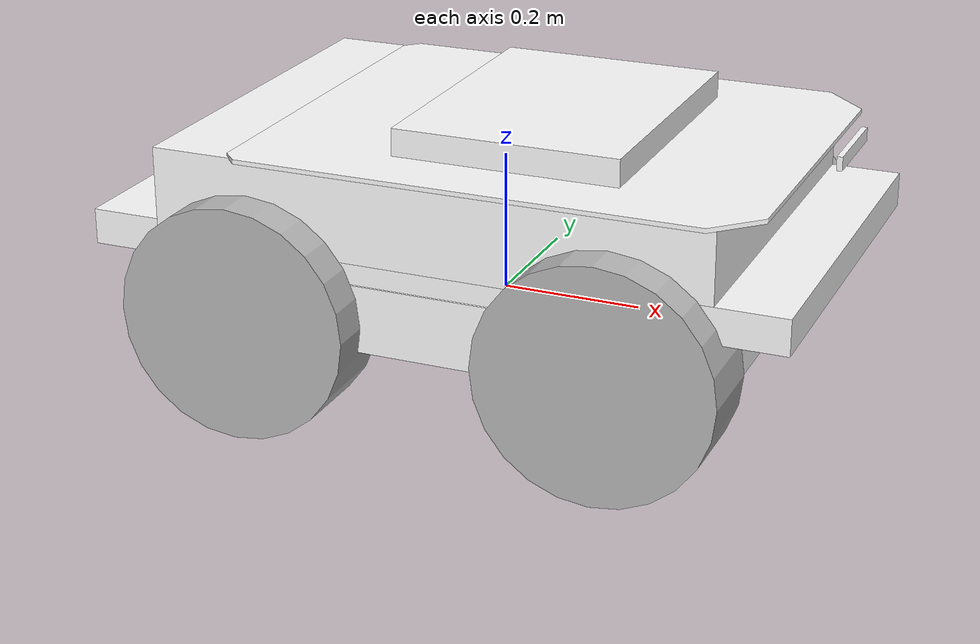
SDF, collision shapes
<?xml version="1.0" encoding="utf-8"?>
<sdf version="1.8">
  <model name="igt_one">

    <link name="base_link">
      <pose>0 0 0 0 0 0</pose>
      <inertial>
        <pose>0 0 0.062329 0 0 0</pose>
        <mass>46.064</mass>
        <inertia>
          <ixx>0.615397</ixx>
          <ixy>-0.0240585</ixy>
          <ixz>-0.120749</ixz>
          <iyy>1.75388</iyy>
          <iyz>-0.0028322</iyz>
          <izz>2.03641</izz>
        </inertia>
      </inertial>

      <collision name="base_link_collision">
        <pose>0 0 0.12 0 0 0</pose>
        <geometry>
          <box>
            <size>0.9874 0.5709 0.05</size>
          </box>
        </geometry>
      </collision>

      <collision name="base_link_collision_bottom">
        <pose>0 0 0.046 0 0 0</pose>
        <geometry>
          <box>
            <size>0.80 0.5709 0.095</size>
          </box>
        </geometry>
      </collision>

      <collision name="base_link_collision_1">
        <pose>0 0 0.185625 0 0 0</pose>
        <geometry>
          <box>
            <size>0.78992 0.5709 0.12375</size>
          </box>
        </geometry>
      </collision>

      <collision name="base_link_fixed_joint_lump__camera/camera_link_collision_2">
        <pose>0.488 0 0.272 0 0 0</pose>
        <geometry>
          <box>
            <size>0.0078 0.13 0.0192</size>
          </box>
        </geometry>
        <surface>
          <contact>
            <ode>
              <kp>1e+13</kp>
              <kd>1</kd>
            </ode>
          </contact>
          <friction>
            <ode>
              <mu2>1</mu2>
              <fdir1>0 0 0</fdir1>
            </ode>
          </friction>
        </surface>
      </collision>

      <collision name="base_link_fixed_joint_lump__top_plate_link_collision_3">
        <pose>0.0812 0 0.245 0 0 0</pose>
        <geometry>
          <mesh>
            <scale>1 1 1</scale>
            <uri>file:///home/jasonwoo/colcon_ws/src/ros2-igt/igt_ignition/igt_one/meshes/top_plate.dae</uri>
          </mesh>
        </geometry>
      </collision>

      <collision name="base_link_fixed_joint_lump__top_plate_link_collision_4">
        <pose>0.0812 0 0.245 0 0 0</pose>
        <geometry>
          <box>
            <size>0.32 0.41 0.09</size>
          </box>
        </geometry>
      </collision>

      <visual name="base_link_visual">
        <pose>0 0 0 0 -0 0</pose>
        <geometry>
          <mesh>
            <scale>1 1 1</scale>
            <uri>file:///home/jasonwoo/colcon_ws/src/ros2-igt/igt_ignition/igt_one/meshes/base_link.dae</uri>
          </mesh>
        </geometry>
      </visual>

      <visual name="base_link_fixed_joint_lump__camera/camera_link_visual_1">
        <pose>0.438 0 0.272 0 0 0</pose>
        <geometry>
          <mesh>
            <uri>file:///home/jasonwoo/colcon_ws/src/ros2-igt/igt_ignition/igt_one/meshes/realsense.dae</uri>
          </mesh>
        </geometry>
      </visual>

      <visual name="base_link_fixed_joint_lump__cliff_sensor_link_visual_2">
        <pose>0.435 0 0.235 -2.35619 0 -1.5708</pose>
        <geometry>
          <cylinder>
            <length>0.02</length>
            <radius>0.005</radius>
          </cylinder>
        </geometry>
      </visual>

      <visual name="base_link_fixed_joint_lump__front_bumper_link_visual_3">
        <pose>0.48 0 0.091 0 0 0</pose>
        <geometry>
          <mesh>
            <scale>1 1 1</scale>
            <uri>file:///home/jasonwoo/colcon_ws/src/ros2-igt/igt_ignition/igt_one/meshes/bumper.dae</uri>
          </mesh>
        </geometry>
      </visual>

      <visual name="base_link_fixed_joint_lump__rear_bumper_link_visual_4">
        <pose>-0.48 0 0.091 0 0 3.14159</pose>
        <geometry>
          <mesh>
            <scale>1 1 1</scale>
            <uri>file:///home/jasonwoo/colcon_ws/src/ros2-igt/igt_ignition/igt_one/meshes/bumper.dae</uri>
          </mesh>
        </geometry>
      </visual>

      <visual name="base_link_fixed_joint_lump__top_chassis_link_visual_5">
        <pose>0 0 0 0 -0 0</pose>
        <geometry>
          <mesh>
            <scale>1 1 1</scale>
            <uri>file:///home/jasonwoo/colcon_ws/src/ros2-igt/igt_ignition/igt_one/meshes/top_chassis.dae</uri>
          </mesh>
        </geometry>
      </visual>

      <visual name="base_link_fixed_joint_lump__top_plate_link_visual_6">
        <pose>0.0812 0 0.245 0 -0 0</pose>
        <geometry>
          <mesh>
            <scale>1 1 1</scale>
            <uri>file:///home/jasonwoo/colcon_ws/src/ros2-igt/igt_ignition/igt_one/meshes/top_plate.dae</uri>
          </mesh>
        </geometry>
      </visual>

      <visual name="base_link_fixed_joint_lump__user_rail_link_visual_13">
        <pose>0.272 0 0.245 0 -0 0</pose>
        <geometry>
          <mesh>
            <scale>1 1 1</scale>
            <uri>file:///home/jasonwoo/colcon_ws/src/ros2-igt/igt_ignition/igt_one/meshes/user_rail.dae</uri>
          </mesh>
        </geometry>
      </visual>

      <sensor name="camera_igt_one" type="camera">
        <pose>0.438 0 0.272 0 0 0</pose>
        <camera>
          <horizontal_fov>1.047</horizontal_fov>
          <image>
            <width>320</width>
            <height>240</height>
          </image>
          <clip>
            <near>0.1</near>
            <far>100</far>
          </clip>
        </camera>
        <always_on>1</always_on>
        <update_rate>30</update_rate>
        <visualize>true</visualize>
        <topic>/model/igt_one/camera</topic>
      </sensor>

      <sensor name="d435_depth" type="depth_camera">
				<always_on>1</always_on>
				<update_rate>10</update_rate>
				<visualize>true</visualize>
				<topic>/model/igt_one/depth_camera</topic>
				<pose>0.438 0 0.322 0 0 0</pose>
				<camera>
					<horizontal_fov>1.05</horizontal_fov>
					<image>
						<width>256</width>
						<height>256</height>
					</image>
					<clip>
						<near>0.1</near>
						<far>100</far>
					</clip>
					<noise>
						<type>gaussian</type>
						<mean>0</mean>
						<stddev>0.1</stddev>
					</noise>
				</camera>
			</sensor>

      <sensor name="front_cliff_laser" type="gpu_ray">
          <pose>0.435 0 0.235 0 -2.4434589 0</pose>
          <update_rate>50</update_rate>
          <lidar>
              <scan>
                  <horizontal>
                      <samples>1</samples>
                      <resolution>1</resolution>
                      <min_angle>3.141592653589793</min_angle>
                      <max_angle>3.141592653589793</max_angle>
                  </horizontal>
              </scan>
              <range>
                  <min>0.04</min>
                  <max>40</max>
                  <resolution>0.01</resolution>
              </range>
              <noise>
                  <type>gaussian</type>
                  <mean>0</mean>
                  <stddev>0.01</stddev>
              </noise>
          </lidar>
      </sensor>
      <gravity>1</gravity>
      <velocity_decay/>

      <sensor name="gpu_lidar" type="gpu_lidar">
        <pose>0.48 0 0.716 0 0 0</pose>
        <visualize>true</visualize>
        <topic>/model/igt_one/laserscan</topic>
        <update_rate>10</update_rate>
        <always_on>1</always_on>
        <ray>
          <scan>
            <horizontal>
              <samples>640</samples>
              <resolution>1</resolution>
              <min_angle>-3.14159</min_angle>
              <max_angle>3.14159</max_angle>
            </horizontal>
            <vertical>
              <samples>1</samples>
              <resolution>1</resolution>
              <min_angle>0</min_angle>
              <max_angle>0</max_angle>
            </vertical>
          </scan>
          <range>
            <min>0.08</min>
            <max>10</max>
            <resolution>0.01</resolution>
          </range>
          <noise>
            <type>gaussian</type>
            <mean>0</mean>
            <stddev>0.01</stddev>
          </noise>
        </ray>
      </sensor>

      <light name="flashlight_flashlight_light_source_lamp_light" type="spot">
        <pose>0.48 0.08 0.12 3.141592653589793 1.5707926535897934 -0.0015926535897931</pose>
        <attenuation>
          <range>50</range>
          <linear>0</linear>
          <constant>0.1</constant>
          <quadratic>0.0025</quadratic>
        </attenuation>
        <diffuse>0.8 0.8 0.5 1</diffuse>
        <specular>0.8 0.8 0.5 1</specular>
        <spot>
          <inner_angle>1.2</inner_angle>
          <outer_angle>1.3</outer_angle>
          <falloff>1</falloff>
        </spot>
        <direction>0 0 -1</direction>
      </light>

      <visual name="flashlight_flashlight_light_source_lamp_viz_visual">
        <pose>0.48 0.08 0.12 3.141592653589793 1.5707926535897934 -0.0015926535897931</pose>
        <geometry>
          <cylinder>
            <radius>0.019</radius>
            <length>0.005</length>
          </cylinder>
        </geometry>
        <transparency>0</transparency>
        <material>
          <ambient>1 1 1 1</ambient>
          <diffuse>1 1 1 1</diffuse>
          <specular>1 1 1 1</specular>
          <emissive>1 1 1 1</emissive>
        </material>
      </visual>

      <sensor name="imu_sensor" type="imu">
        <always_on>1</always_on>
        <update_rate>50</update_rate>
        <imu>
          <enable_orientation>0</enable_orientation>
          <angular_velocity>
            <x>
              <noise type="gaussian">
                <mean>0</mean>
                <stddev>0.009</stddev>
                <bias_mean>0.00075</bias_mean>
                <bias_stddev>0.005</bias_stddev>
                <dynamic_bias_stddev>0.00002</dynamic_bias_stddev>
                <dynamic_bias_correlation_time>400.0</dynamic_bias_correlation_time>
                <precision>0.00025</precision>
              </noise>
            </x>

            <y>
              <noise type="gaussian">
                  <mean>0</mean>
                  <stddev>0.009</stddev>
                  <bias_mean>0.00075</bias_mean>
                  <bias_stddev>0.005</bias_stddev>
                  <dynamic_bias_stddev>0.00002</dynamic_bias_stddev>
                  <dynamic_bias_correlation_time>400.0</dynamic_bias_correlation_time>
                  <precision>0.00025</precision>
              </noise>
            </y>

            <z>
              <noise type="gaussian">
                  <mean>0</mean>
                  <stddev>0.009</stddev>
                  <bias_mean>0.00075</bias_mean>
                  <bias_stddev>0.005</bias_stddev>
                  <dynamic_bias_stddev>0.00002</dynamic_bias_stddev>
                  <dynamic_bias_correlation_time>400.0</dynamic_bias_correlation_time>
                  <precision>0.00025</precision>
              </noise>
            </z>
          </angular_velocity>

          <linear_acceleration>
            <x>
              <noise type="gaussian">
                  <mean>0</mean>
                  <stddev>0.021</stddev>
                  <bias_mean>0.05</bias_mean>
                  <bias_stddev>0.0075</bias_stddev>
                  <dynamic_bias_stddev>0.000375</dynamic_bias_stddev>
                  <dynamic_bias_correlation_time>175.0</dynamic_bias_correlation_time>
                  <precision>0.005</precision>
              </noise>
            </x>

            <y>
              <noise type="gaussian">
                <mean>0</mean>
                <stddev>0.021</stddev>
                <bias_mean>0.05</bias_mean>
                <bias_stddev>0.0075</bias_stddev>
                <dynamic_bias_stddev>0.000375</dynamic_bias_stddev>
                <dynamic_bias_correlation_time>175.0</dynamic_bias_correlation_time>
                <precision>0.005</precision>
              </noise>
            </y>

            <z>
              <noise type="gaussian">
                <mean>0</mean>
                <stddev>0.021</stddev>
                <bias_mean>0.05</bias_mean>
                <bias_stddev>0.0075</bias_stddev>
                <dynamic_bias_stddev>0.000375</dynamic_bias_stddev>
                <dynamic_bias_correlation_time>175.0</dynamic_bias_correlation_time>
                <precision>0.005</precision>
              </noise>
            </z>
          </linear_acceleration>
        </imu>
      </sensor>
    </link>

    <link name="front_left_wheel_link">
      <pose>0.256 0.2854 0.03282 0 -0 0</pose>
      <inertial>
        <pose>0 0 0 0 0 0</pose>
        <mass>2.637</mass>
        <inertia>
          <ixx>0.02467</ixx>
          <ixy>0</ixy>
          <ixz>0</ixz>
          <iyy>0.04411</iyy>
          <iyz>0</iyz>
          <izz>0.02467</izz>
        </inertia>
      </inertial>

      <collision name="front_left_wheel_link_collision">
        <pose>0 0 0 1.5707963267948966 -0 0</pose>
        <geometry>
          <cylinder>
            <length>0.1143</length>
            <radius>0.1651</radius>
          </cylinder>
        </geometry>
        <surface>
          <contact>
            <ode>
              <kp>1e+07</kp>
              <kd>1</kd>
            </ode>
          </contact>
          <friction>
            <ode>
              <mu>0.5</mu>
              <mu2>1</mu2>
              <slip1>0.00062</slip1>
              <slip2>0</slip2>
              <fdir1>0 0 1</fdir1>
            </ode>
          </friction>
        </surface>
      </collision>

      <visual name="front_left_wheel_link_visual">
        <pose>0 0 0 0 -0 0</pose>
        <geometry>
          <mesh>
            <scale>1 1 1</scale>
            <uri>file:///home/jasonwoo/colcon_ws/src/ros2-igt/igt_ignition/igt_one/meshes/wheel.dae</uri>
          </mesh>
        </geometry>
      </visual>
      <gravity>1</gravity>
      <velocity_decay/>
    </link>

    <joint name="front_left_wheel_joint" type="revolute">
      <child>front_left_wheel_link</child>
      <parent>base_link</parent>
      <axis>
        <xyz>0 1 0</xyz>
        <limit>
          <lower>-1e+16</lower>
          <upper>1e+16</upper>
        </limit>
        <dynamics>
          <spring_reference>0</spring_reference>
          <spring_stiffness>0</spring_stiffness>
        </dynamics>
        <use_parent_model_frame>1</use_parent_model_frame>
      </axis>
    </joint>

    <link name="front_right_wheel_link">
      <pose>0.256 -0.2854 0.03282 0 -0 0</pose>
      <inertial>
        <pose>0 0 0 0 -0 0</pose>
        <mass>2.637</mass>
        <inertia>
          <ixx>0.02467</ixx>
          <ixy>0</ixy>
          <ixz>0</ixz>
          <iyy>0.04411</iyy>
          <iyz>0</iyz>
          <izz>0.02467</izz>
        </inertia>
      </inertial>

      <collision name="front_right_wheel_link_collision">
        <pose>0 0 0 1.5707963267948966 -0 0</pose>
        <geometry>
          <cylinder>
            <length>0.1143</length>
            <radius>0.1651</radius>
          </cylinder>
        </geometry>
        <surface>
          <contact>
            <ode>
              <kp>1e+07</kp>
              <kd>1</kd>
            </ode>
          </contact>
          <friction>
            <ode>
              <mu>0.5</mu>
              <mu2>1</mu2>
              <slip1>0.00062</slip1>
              <slip2>0</slip2>
              <fdir1>0 0 1</fdir1>
            </ode>
          </friction>
        </surface>
      </collision>

      <visual name="front_right_wheel_link_visual">
        <pose>0 0 0 0 -0 0</pose>
        <geometry>
          <mesh>
            <scale>1 1 1</scale>
            <uri>file:///home/jasonwoo/colcon_ws/src/ros2-igt/igt_ignition/igt_one/meshes/wheel.dae</uri>
          </mesh>
        </geometry>
      </visual>
      <gravity>1</gravity>
      <velocity_decay/>
    </link>

    <joint name="front_right_wheel_joint" type="revolute">
      <child>front_right_wheel_link</child>
      <parent>base_link</parent>
      <axis>
        <xyz>0 1 0</xyz>
        <limit>
          <lower>-1e+16</lower>
          <upper>1e+16</upper>
        </limit>
        <dynamics>
          <spring_reference>0</spring_reference>
          <spring_stiffness>0</spring_stiffness>
        </dynamics>
        <use_parent_model_frame>1</use_parent_model_frame>
      </axis>
    </joint>

    <link name="rear_left_wheel_link">
      <pose>-0.256 0.2854 0.03282 0 -0 0</pose>
      <inertial>
        <pose>0 0 0 0 -0 0</pose>
        <mass>2.637</mass>
        <inertia>
          <ixx>0.02467</ixx>
          <ixy>0</ixy>
          <ixz>0</ixz>
          <iyy>0.04411</iyy>
          <iyz>0</iyz>
          <izz>0.02467</izz>
        </inertia>
      </inertial>

      <collision name="rear_left_wheel_link_collision">
        <pose>0 0 0 1.5707963267948966 -0 0</pose>
        <geometry>
          <cylinder>
            <length>0.1143</length>
            <radius>0.1651</radius>
          </cylinder>
        </geometry>
        <surface>
          <contact>
            <ode>
              <kp>1e+07</kp>
              <kd>1</kd>
            </ode>
          </contact>
          <friction>
            <ode>
              <mu>0.5</mu>
              <mu2>1</mu2>
              <slip1>0.00062</slip1>
              <slip2>0</slip2>
              <fdir1>0 0 1</fdir1>
            </ode>
          </friction>
        </surface>
      </collision>

      <visual name="rear_left_wheel_link_visual">
        <pose>0 0 0 0 -0 0</pose>
        <geometry>
          <mesh>
            <scale>1 1 1</scale>
            <uri>file:///home/jasonwoo/colcon_ws/src/ros2-igt/igt_ignition/igt_one/meshes/wheel.dae</uri>
          </mesh>
        </geometry>
      </visual>
      <gravity>1</gravity>
      <velocity_decay/>
    </link>

    <joint name="rear_left_wheel_joint" type="revolute">
      <child>rear_left_wheel_link</child>
      <parent>base_link</parent>
      <axis>
        <xyz>0 1 0</xyz>
        <limit>
          <lower>-1e+16</lower>
          <upper>1e+16</upper>
        </limit>
        <dynamics>
          <spring_reference>0</spring_reference>
          <spring_stiffness>0</spring_stiffness>
        </dynamics>
        <use_parent_model_frame>1</use_parent_model_frame>
      </axis>
    </joint>

    <link name="rear_right_wheel_link">
      <pose >-0.256 -0.2854 0.03282 0 -0 0</pose>
      <inertial>
        <pose>0 0 0 0 -0 0</pose>
        <mass>2.637</mass>
        <inertia>
          <ixx>0.02467</ixx>
          <ixy>0</ixy>
          <ixz>0</ixz>
          <iyy>0.04411</iyy>
          <iyz>0</iyz>
          <izz>0.02467</izz>
        </inertia>
      </inertial>

      <collision name="rear_right_wheel_link_collision">
        <pose>0 0 0 1.5707963267948966 -0 0</pose>
        <geometry>
          <cylinder>
            <length>0.1143</length>
            <radius>0.1651</radius>
          </cylinder>
        </geometry>
        <surface>
          <contact>
            <ode>
              <kp>1e+07</kp>
              <kd>1</kd>
            </ode>
          </contact>
          <friction>
            <ode>
              <mu>0.5</mu>
              <mu2>1</mu2>
              <slip1>0.00062</slip1>
              <slip2>0</slip2>
              <fdir1>0 0 1</fdir1>
            </ode>
          </friction>
        </surface>
      </collision>

      <visual name="rear_right_wheel_link_visual">
        <pose>0 0 0 0 -0 0</pose>
        <geometry>
          <mesh>
            <scale>1 1 1</scale>
            <uri>file:///home/jasonwoo/colcon_ws/src/ros2-igt/igt_ignition/igt_one/meshes/wheel.dae</uri>
          </mesh>
        </geometry>
      </visual>
      <gravity>1</gravity>
      <velocity_decay/>
    </link>

    <joint name="rear_right_wheel_joint" type="revolute">
      <child>rear_right_wheel_link</child>
      <parent>base_link</parent>
      <axis>
        <xyz>0 1 0</xyz>
        <limit>
          <lower>-1e+16</lower>
          <upper>1e+16</upper>
        </limit>
        <dynamics>
          <spring_reference>0</spring_reference>
          <spring_stiffness>0</spring_stiffness>
        </dynamics>
        <use_parent_model_frame>1</use_parent_model_frame>
      </axis>
    </joint>

    <plugin
      filename="ignition-gazebo-joint-state-publisher-system"
      name="ignition::gazebo::systems::JointStatePublisher">
    </plugin>

    <plugin
      filename="ignition-gazebo-pose-publisher-system"
      name="ignition::gazebo::systems::PosePublisher">
      <publish_link_pose>true</publish_link_pose>
      <use_pose_vector_msg>true</use_pose_vector_msg>
      <static_publisher>true</static_publisher>
      <static_update_frequency>1</static_update_frequency>
    </plugin>

    <plugin
      filename="ignition-gazebo-odometry-publisher-system"
      name="ignition::gazebo::systems::OdometryPublisher">
      <odom_frame>odom</odom_frame>
      <robot_base_frame>base_link</robot_base_frame>
    </plugin>

    <plugin
      filename="ignition-gazebo-diff-drive-system"
      name="ignition::gazebo::systems::DiffDrive">
      <num_wheel_pairs>2</num_wheel_pairs>
      <left_joint>front_left_wheel_joint</left_joint>
      <right_joint>front_right_wheel_joint</right_joint>
      <left_joint>rear_left_wheel_joint</left_joint>
      <right_joint>rear_right_wheel_joint</right_joint>
      <wheel_separation>0.57</wheel_separation>
      <wheel_radius>0.165</wheel_radius>
      <odometryTopic>odometry</odometryTopic>
      <odometryFrame>odom</odometryFrame>
      <robotBaseFrame>base_link</robotBaseFrame>
      <odometrySource>1</odometrySource>
      <publishWheelTF>true</publishWheelTF>
      <publishOdom>true</publishOdom>
      <publishWheelJointState>true</publishWheelJointState>
      <odom_publish_frequency>1</odom_publish_frequency>
      <topic>cmd_vel</topic>
    </plugin>
  </model>
</sdf>
